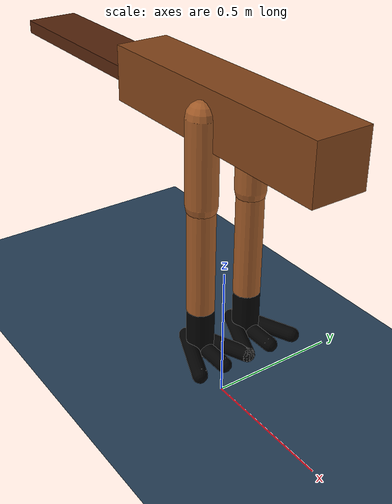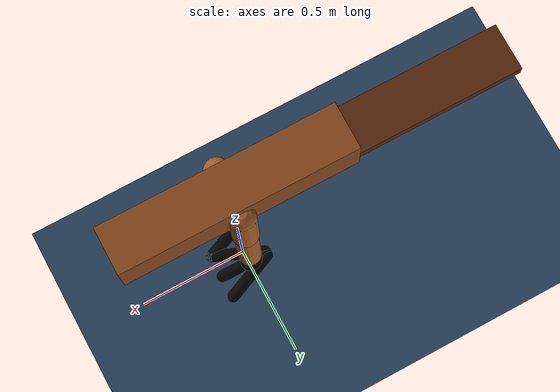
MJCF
<mujoco model="quadruped_body">
<option timestep="0.005"/>

<asset>
  <texture name="body" type="cube" builtin="flat" mark="cross"
           width="128" height="128"
           rgb1="0.8 0.6 0.4" rgb2="0.8 0.6 0.4" markrgb="1 1 1"/>
  <material name="body" texture="body" texuniform="true" rgba="0.8 0.6 .4 1"/>

  <texture name="dark" type="cube" builtin="flat"
           width="128" height="128"
           rgb1="0.1 0.1 0.1" rgb2="0.1 0.1 0.1"/>
  <material name="dark" texture="dark" texuniform="true" rgba="0.1 0.1 0.1 1"/>

  <!-- Light brown torso -->
  <texture name="torso" type="cube" builtin="flat"
           width="128" height="128"
           rgb1="0.72 0.52 0.32" rgb2="0.72 0.52 0.32"/>
  <material name="torso" texture="torso" texuniform="true" rgba="0.72 0.52 0.32 1"/>

  <!-- Tail: slightly darker brown -->
  <texture name="tail_tex" type="cube" builtin="flat"
           width="128" height="128"
           rgb1="0.58 0.38 0.22" rgb2="0.58 0.38 0.22"/>
  <material name="tail_mat" texture="tail_tex" texuniform="true" rgba="0.58 0.38 0.22 1"/>

  <texture name="grid" type="2d" builtin="checker"
           width="512" height="512" rgb1=".1 .2 .3" rgb2=".2 .3 .4"/>
  <material name="grid" texture="grid" texrepeat="1 1"
            texuniform="true" reflectance=".2"/>
</asset>

<default>
  <motor ctrlrange="-1 1" ctrllimited="true"/>

  <default class="body">
    <geom type="capsule" condim="1" friction=".7"
          solimp=".9 .99 .003" solref=".015 1" material="body" group="1"/>
    <joint type="hinge" damping=".2" stiffness="1" armature=".01"
           limited="true" solimplimit="0 .99 .01"/>

    <default class="thigh">
      <geom fromto="0 0 0  0 0 -.3" size=".055"/>
    </default>
    <default class="shin1">
      <geom fromto="0 0 0  0 0 -.4" size=".049"/>
    </default>
    <default class="shin2">
      <geom fromto="0 0 0  0 0 -.15" size=".049" material="dark"/>
    </default>

    <default class="hip">
      <joint pos="0 0 0" axis="0 1 0" range="-60 90"
             damping=".3" stiffness="2"/>
    </default>
    <default class="knee">
      <joint pos="0 0 .02" axis="0 1 0" range="-160 2"/>
    </default>
    <default class="mid_shin">
      <joint pos="0 0 0" axis="0 1 0" range="-30 30"
             damping=".2" stiffness="2"/>
    </default>
    <default class="ankle">
      <joint range="-90 90"/>
      <default class="ankle_y">
        <joint pos="0 0 .08" axis="0 1 0" stiffness="6"/>
      </default>
      <default class="ankle_x">
        <joint pos="0 0 .04" stiffness="3"/>
      </default>
    </default>
  </default>

  <default class="foot1">
    <geom type="capsule" size=".027" fromto="-.07 -.01 0  .14 -.1 0"
          material="dark" condim="1" friction=".7"
          solimp=".9 .99 .003" solref=".015 1" group="1"/>
  </default>
  <default class="foot2">
    <geom type="capsule" size=".027" fromto="-.07 .00 0  .14 .00 0"
          material="dark" condim="1" friction=".7"
          solimp=".9 .99 .003" solref=".015 1" group="0"/>
  </default>
  <default class="foot3">
    <geom type="capsule" size=".027" fromto="-.07 .01 0  .14 .1 0"
          material="dark" condim="1" friction=".7"
          solimp=".9 .99 .003" solref=".015 1" group="1"/>
  </default>
</default>

<worldbody>
  <geom name="floor" size="0 0 .05" type="plane" material="grid" condim="3"/>
  <light name="top" pos="0 0 3" dir="0 0 -1" diffuse=".9 .9 .9"/>

  <body name="torso" pos="0 0 1.1">
    <geom name="torso_geom" type="box" size="0.5 0.1 0.1"
          material="torso" condim="3" friction=".7"/>

    <body name="tail" pos="-0.5 0 0">
      <joint name="tail_joint"
             type="hinge"
             axis="0 1 0"
             range="-60 60"
             damping=".3"
             stiffness="3"
             armature=".01"/>
      <geom name="tail_geom"
            type="box"
            size="0.35 0.1 0.025"
            pos="-0.35 0 0"
            material="tail_mat"
            condim="3" friction=".7"/>
    </body><!-- end tail -->

    <!-- ── RIGHT LEG (y = +0.1) ── -->
    <body name="thigh_right" pos="0 0.1 0" childclass="body">
      <joint name="hip_right" class="hip"/>
      <geom  name="thigh_right" class="thigh"/>

      <body name="shin1_right" pos="0 0 -.3">
        <joint name="knee_right" class="knee"/>
        <geom  name="shin1_right" class="shin1"/>

        <body name="shin2_right" pos="0 0 -.4">
          <joint name="mid_shin_right" class="mid_shin"/>
          <geom  name="shin2_right" class="shin2"/>

          <body name="foot_right" pos="0 0 -.15">
            <joint name="ankle_y_right" class="ankle_y"/>
            <joint name="ankle_x_right" class="ankle_x" axis="1 0 .5"/>
            <geom  name="foot1_right" class="foot1"/>
            <geom  name="foot2_right" class="foot2"/>
            <geom  name="foot3_right" class="foot3"/>
          </body>
        </body>
      </body>
    </body><!-- end right leg -->

    <!-- ── LEFT LEG (y = -0.1) ── -->
    <body name="thigh_left" pos="0 -0.1 0" childclass="body">
      <joint name="hip_left" class="hip"/>
      <geom  name="thigh_left" class="thigh"/>

      <body name="shin1_left" pos="0 0 -.3">
        <joint name="knee_left" class="knee"/>
        <geom  name="shin1_left" class="shin1"/>

        <body name="shin2_left" pos="0 0 -.4">
          <joint name="mid_shin_left" class="mid_shin"/>
          <geom  name="shin2_left" class="shin2"/>

          <body name="foot_left" pos="0 0 -.15">
            <joint name="ankle_y_left" class="ankle_y"/>
            <joint name="ankle_x_left" class="ankle_x" axis="1 0 .5"/>
            <geom  name="foot1_left" class="foot1"/>
            <geom  name="foot2_left" class="foot2"/>
            <geom  name="foot3_left" class="foot3"/>
          </body>
        </body>
      </body>
    </body><!-- end left leg -->

  </body><!-- end torso -->
</worldbody>

<actuator>
  <!-- TAIL -->
  <motor name="tail"           gear="10"  joint="tail_joint"/>

  <!-- RIGHT LEG: hip | knee | mid_shin | ankle_y | ankle_x -->
  <motor name="hip_right"      gear="120" joint="hip_right"/>
  <motor name="knee_right"     gear="80"  joint="knee_right"/>
  <motor name="mid_shin_right" gear="40"  joint="mid_shin_right"/>
  <motor name="ankle_y_right"  gear="20"  joint="ankle_y_right"/>
  <motor name="ankle_x_right"  gear="20"  joint="ankle_x_right"/>

  <!-- LEFT LEG: hip | knee | mid_shin | ankle_y | ankle_x -->
  <motor name="hip_left"       gear="120" joint="hip_left"/>
  <motor name="knee_left"      gear="80"  joint="knee_left"/>
  <motor name="mid_shin_left"  gear="40"  joint="mid_shin_left"/>
  <motor name="ankle_y_left"   gear="20"  joint="ankle_y_left"/>
  <motor name="ankle_x_left"   gear="20"  joint="ankle_x_left"/>
</actuator>

<keyframe>
  <!-- 11 joints: tail | R_hip R_knee R_mid R_ank_y R_ank_x | L_hip L_knee L_mid L_ank_y L_ank_x -->
  <key name="stand" qpos="0  0 0 0 0 0  0 0 0 0 0"/>
</keyframe>

</mujoco>
